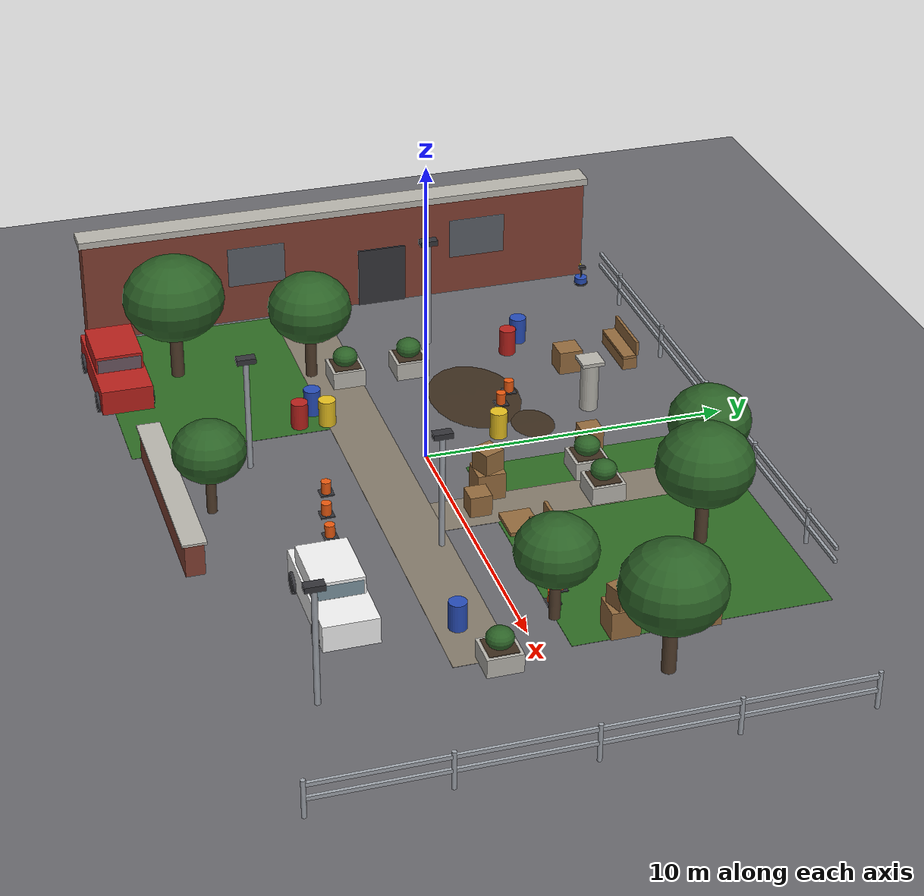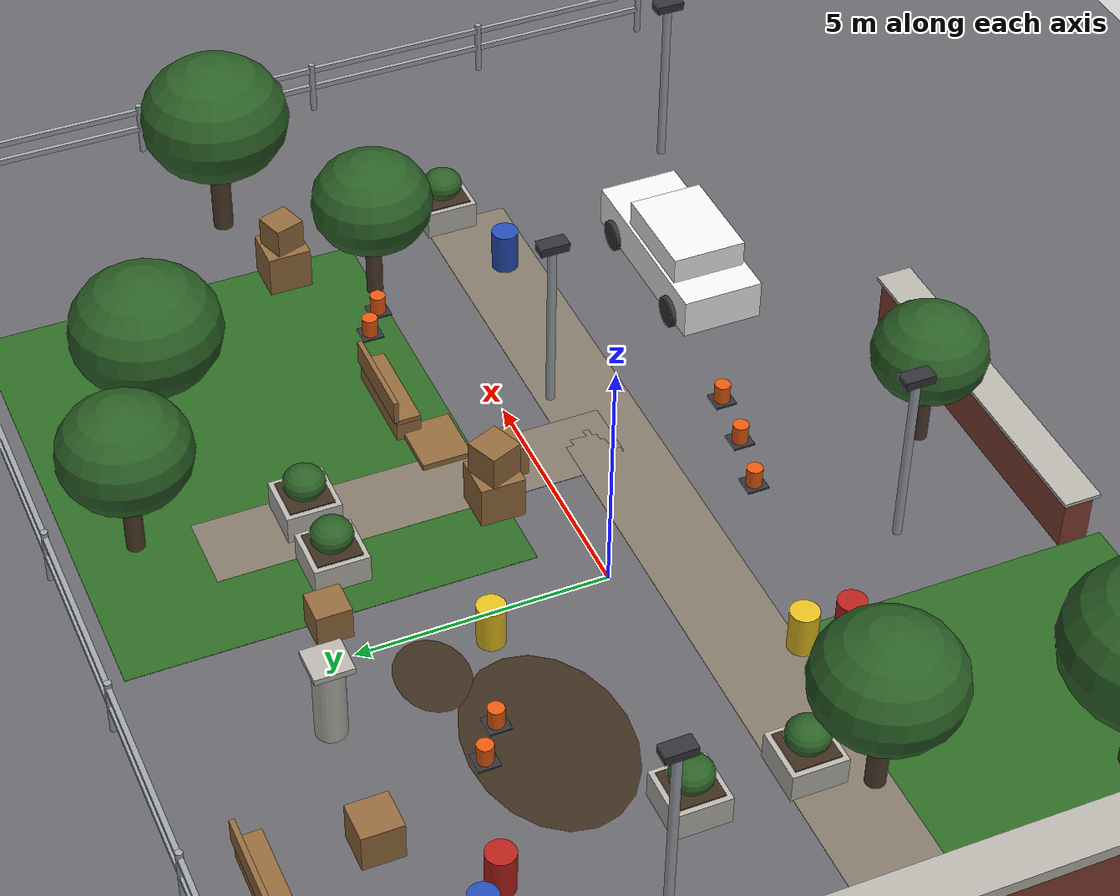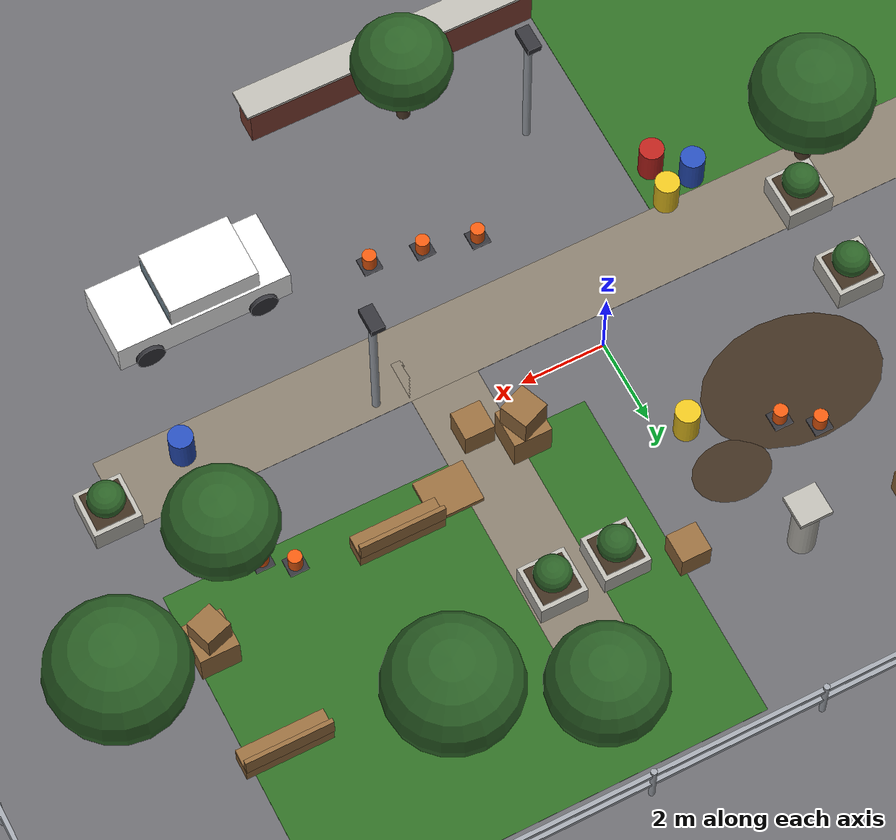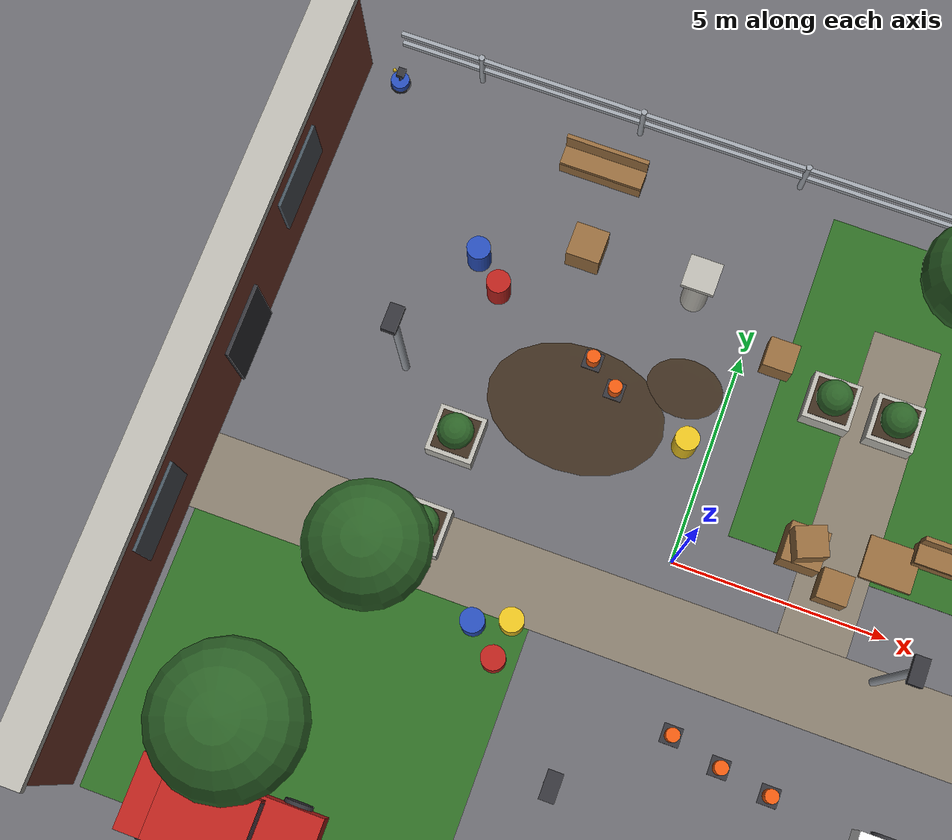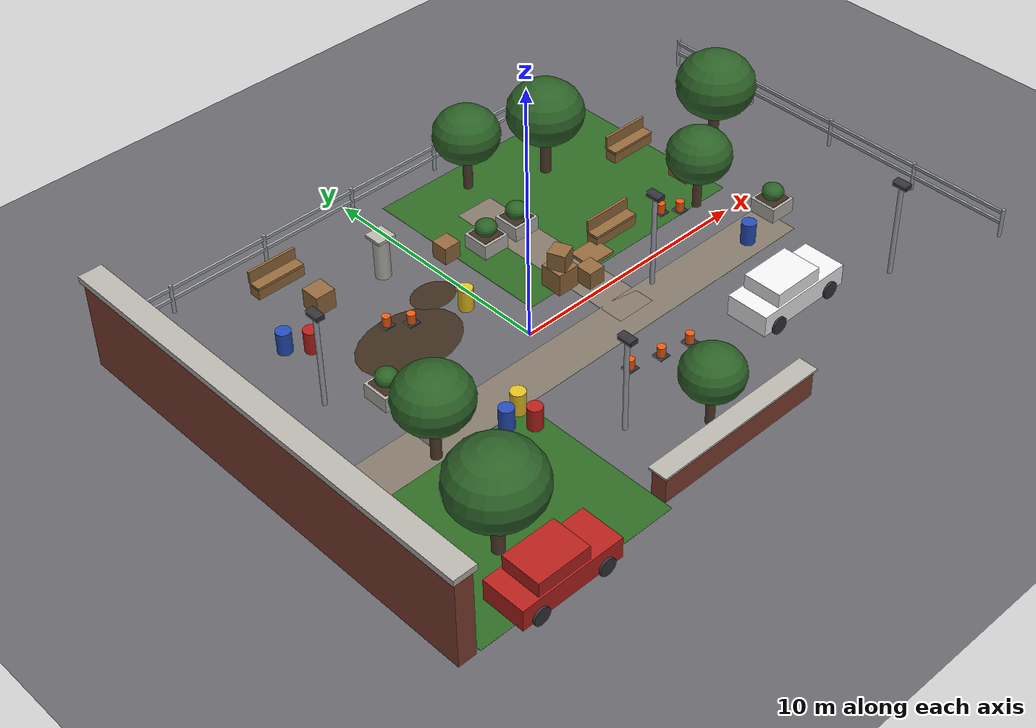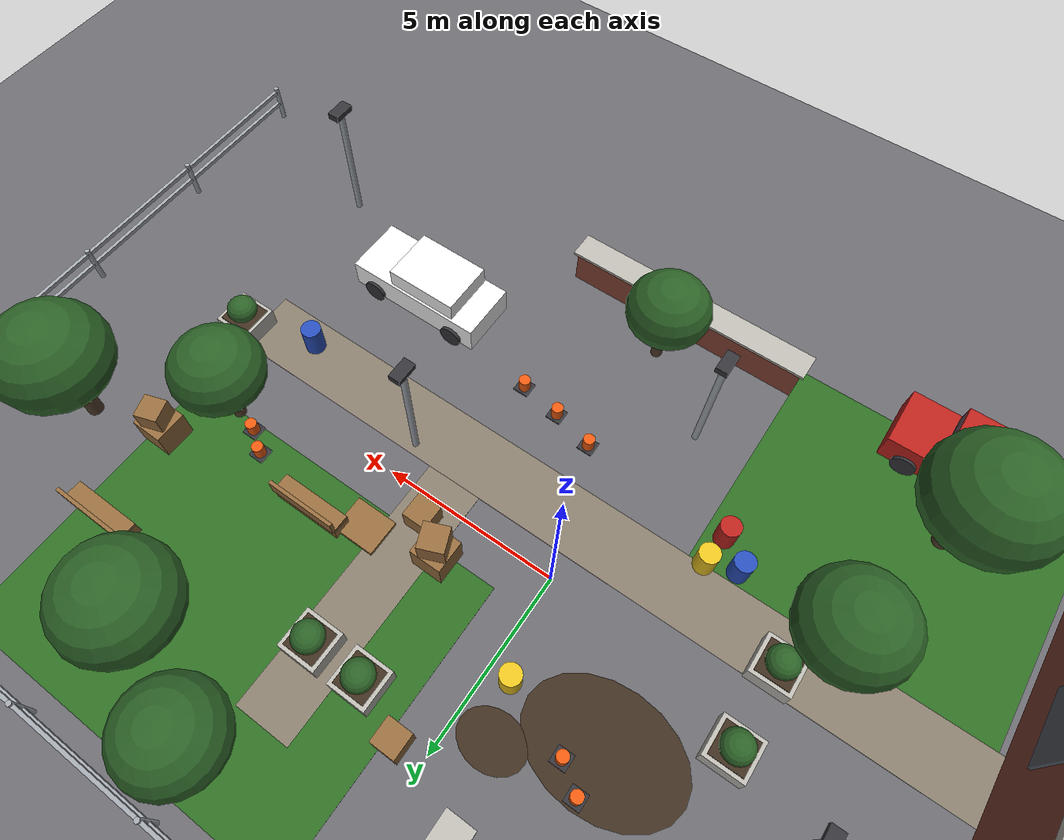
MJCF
<mujoco model="semantic_costmap_navigation">

    <compiler angle="degree" autolimits="true"/>

    <option timestep="0.005"
            gravity="0 0 -9.81"
            integrator="implicitfast"/>

    <visual>
        <headlight diffuse="0.3 0.3 0.3"
                   ambient="0.35 0.35 0.38"
                   specular="0.1 0.1 0.1"/>
        <quality shadowsize="4096" offsamples="8"/>
        <map force="0.1" zfar="80" fogstart="30" fogend="70"/>
        <global offwidth="1920" offheight="1080"/>
        <rgba haze="0.78 0.83 0.90 1"/>
    </visual>

    <asset>

        <texture name="tex_sky" type="skybox" builtin="gradient"
                 rgb1="0.30 0.50 0.80" rgb2="0.85 0.90 0.96"
                 width="512" height="1024"/>

        <texture name="tex_pavement" type="2d" builtin="checker"
                 rgb1="0.44 0.44 0.46" rgb2="0.38 0.38 0.40"
                 mark="random" markrgb="0.52 0.52 0.53" random="0.015"
                 width="512" height="512"/>

        <texture name="tex_grass" type="2d" builtin="flat"
                 rgb1="0.18 0.42 0.14"
                 mark="random" markrgb="0.34 0.60 0.25" random="0.45"
                 width="512" height="512"/>

        <texture name="tex_gravel" type="2d" builtin="flat"
                 rgb1="0.52 0.48 0.42"
                 mark="random" markrgb="0.68 0.65 0.60" random="0.55"
                 width="512" height="512"/>

        <texture name="tex_mud" type="2d" builtin="flat"
                 rgb1="0.24 0.18 0.12"
                 mark="random" markrgb="0.34 0.27 0.19" random="0.30"
                 width="512" height="512"/>

        <texture name="tex_brick" type="cube" builtin="checker"
                 rgb1="0.55 0.27 0.21" rgb2="0.47 0.23 0.18"
                 width="256" height="256"/>

        <texture name="tex_wood" type="cube" builtin="flat"
                 rgb1="0.58 0.42 0.24"
                 mark="edge" markrgb="0.40 0.28 0.15"
                 width="256" height="256"/>

        <texture name="tex_bark" type="cube" builtin="flat"
                 rgb1="0.32 0.24 0.17"
                 mark="random" markrgb="0.22 0.16 0.11" random="0.35"
                 width="256" height="256"/>

        <texture name="tex_foliage" type="cube" builtin="flat"
                 rgb1="0.17 0.38 0.15"
                 mark="random" markrgb="0.26 0.52 0.20" random="0.40"
                 width="256" height="256"/>

        <material name="mat_pavement" texture="tex_pavement"
                  texrepeat="24 24" texuniform="true"
                  specular="0.12" shininess="0.1" reflectance="0.04"/>

        <material name="mat_grass" texture="tex_grass"
                  texrepeat="16 16" texuniform="true"
                  specular="0.02" shininess="0.02"/>

        <material name="mat_gravel" texture="tex_gravel"
                  texrepeat="14 14" texuniform="true"
                  specular="0.05" shininess="0.05"/>

        <material name="mat_mud" texture="tex_mud"
                  texrepeat="8 8" texuniform="true"
                  specular="0.55" shininess="0.6" reflectance="0.12"/>

        <material name="mat_brick"   texture="tex_brick"   texrepeat="6 3" specular="0.05" shininess="0.05"/>
        <material name="mat_wood"    texture="tex_wood"    specular="0.15" shininess="0.15"/>
        <material name="mat_bark"    texture="tex_bark"    specular="0.05" shininess="0.05"/>
        <material name="mat_foliage" texture="tex_foliage" specular="0.08" shininess="0.1"/>

        <material name="mat_concrete" rgba="0.72 0.71 0.68 1" specular="0.1"  shininess="0.1"/>
        <material name="mat_orange"   rgba="0.92 0.35 0.06 1" specular="0.3"  shininess="0.3"/>
        <material name="mat_white"    rgba="0.95 0.95 0.95 1" specular="0.3"  shininess="0.3"/>
        <material name="mat_blue"     rgba="0.15 0.30 0.72 1" specular="0.55" shininess="0.6"/>
        <material name="mat_red"      rgba="0.72 0.13 0.11 1" specular="0.55" shininess="0.6"/>
        <material name="mat_yellow"   rgba="0.90 0.75 0.12 1" specular="0.4"  shininess="0.4"/>
        <material name="mat_steel"    rgba="0.62 0.64 0.67 1" specular="0.85" shininess="0.85" reflectance="0.15"/>
        <material name="mat_darkgrey" rgba="0.20 0.20 0.22 1" specular="0.3"  shininess="0.3"/>
        <material name="mat_glass"    rgba="0.35 0.48 0.55 0.7" specular="0.9" shininess="0.9" reflectance="0.3"/>

    </asset>

    <default>
        <default class="obstacle">
            <geom contype="1" conaffinity="1" condim="3" friction="0.9 0.01 0.001"/>
        </default>
        <default class="terrain">
            <geom contype="0" conaffinity="0" group="0"/>
        </default>
    </default>

    <worldbody>

        <light name="sun"
               pos="6 -8 12" dir="-0.4 0.55 -0.85"
               directional="true" castshadow="true"
               diffuse="0.85 0.83 0.78" specular="0.25 0.25 0.25"/>

        <light name="fill"
               pos="-8 6 9" dir="0.5 -0.4 -0.8"
               directional="true" castshadow="false"
               diffuse="0.22 0.24 0.30"/>

        <geom name="floor" type="plane" size="25 25 0.1"
              material="mat_pavement"
              contype="1" conaffinity="1" condim="3"
              friction="1.0 0.01 0.001"/>

        <geom name="grass_patch" class="terrain" type="box"
              pos="6 5 0.005" size="5.0 4.0 0.005" material="mat_grass"/>

        <geom name="grass_lawn_b" class="terrain" type="box"
              pos="-6.5 -5.5 0.005" size="4.0 3.5 0.005" material="mat_grass"/>

        <geom name="gravel_path" class="terrain" type="box"
              pos="0 -1.6 0.006" size="11.0 0.9 0.005" material="mat_gravel"/>

        <geom name="gravel_spur" class="terrain" type="box"
              pos="3.5 2.5 0.006" size="0.8 4.2 0.005" material="mat_gravel"/>

        <geom name="mud_patch" class="terrain" type="ellipsoid"
              pos="-3.2 2.6 0.004" size="2.1 1.5 0.004" material="mat_mud"/>

        <geom name="mud_patch_small" class="terrain" type="ellipsoid"
              pos="-1.0 3.9 0.004" size="0.9 0.7 0.004" material="mat_mud"/>

        <body name="robot" pos="-9.8 8.7 0.20">

            <freejoint/>

            <geom name="robot_body" class="obstacle" type="cylinder"
                  size="0.22 0.13" material="mat_blue" mass="8.0"/>

            <geom name="robot_bumper" class="terrain" type="cylinder"
                  pos="0 0 -0.10" size="0.24 0.03" material="mat_darkgrey"/>

            <geom name="camera_mount" class="terrain" type="capsule"
                  fromto="0 0 0.13 0 0 0.50" size="0.028" material="mat_darkgrey"/>

            <geom name="sensor_head" class="terrain" type="box"
                  pos="0.06 0 0.53" size="0.09 0.11 0.05" material="mat_darkgrey"/>

            <geom name="robot_beacon" class="terrain" type="sphere"
                  pos="-0.10 0 0.56" size="0.045" material="mat_yellow"/>

            <camera name="rgbd_camera"
                    pos="0.16 0 0.53"
                    xyaxes="0 -1 0  0.259 0 0.966"
                    fovy="90"/>

        </body>

        <geom name="building_wall" class="obstacle" type="box"
              pos="-11.0 0 1.8" size="0.35 9.0 1.8" material="mat_brick"/>

        <geom name="building_trim" class="terrain" type="box"
              pos="-11.0 0 3.68" size="0.45 9.1 0.12" material="mat_concrete"/>

        <geom name="doorway" class="terrain" type="box"
              pos="-10.62 1.5 1.05" size="0.04 0.85 1.05" material="mat_darkgrey"/>

        <geom name="window_a" class="terrain" type="box"
              pos="-10.62 -3.0 2.10" size="0.04 1.0 0.7" material="mat_glass"/>

        <geom name="window_b" class="terrain" type="box"
              pos="-10.62 5.0 2.10" size="0.04 1.0 0.7" material="mat_glass"/>

        <geom name="tree_1_trunk"  class="obstacle" type="cylinder"
              pos="7.0 6.5 1.1" size="0.20 1.1" material="mat_bark"/>
        <geom name="tree_1_canopy" class="terrain" type="ellipsoid"
              pos="7.0 6.5 2.7" size="1.5 1.5 1.25" material="mat_foliage"/>

        <geom name="tree_2_trunk"  class="obstacle" type="cylinder"
              pos="4.2 7.8 1.0" size="0.18 1.0" material="mat_bark"/>
        <geom name="tree_2_canopy" class="terrain" type="ellipsoid"
              pos="4.2 7.8 2.4" size="1.3 1.3 1.1" material="mat_foliage"/>

        <geom name="tree_3_trunk"  class="obstacle" type="cylinder"
              pos="-7.5 -6.5 1.2" size="0.22 1.2" material="mat_bark"/>
        <geom name="tree_3_canopy" class="terrain" type="ellipsoid"
              pos="-7.5 -6.5 2.9" size="1.7 1.7 1.4" material="mat_foliage"/>

        <geom name="tree_4_trunk"  class="obstacle" type="cylinder"
              pos="9.5 1.0 0.95" size="0.17 0.95" material="mat_bark"/>
        <geom name="tree_4_canopy" class="terrain" type="ellipsoid"
              pos="9.5 1.0 2.3" size="1.25 1.25 1.05" material="mat_foliage"/>

        <geom name="crate_1" class="obstacle" type="box"
              pos="2.6 1.2 0.45" size="0.45 0.45 0.45" material="mat_wood"/>

        <geom name="crate_2" class="obstacle" type="box"
              pos="3.5 0.6 0.35" size="0.35 0.35 0.35" material="mat_wood"/>

        <geom name="crate_3" class="obstacle" type="box"
              pos="2.6 1.2 1.25" size="0.35 0.35 0.35"
              euler="0 0 22" material="mat_wood"/>

        <geom name="pallet" class="obstacle" type="box"
              pos="4.6 1.6 0.07" size="0.6 0.5 0.07" material="mat_wood"/>

        <geom name="barrel_1" class="obstacle" type="cylinder"
              pos="-3.0 -3.4 0.45" size="0.28 0.45" material="mat_red"/>

        <geom name="barrel_2" class="obstacle" type="cylinder"
              pos="-3.7 -2.8 0.45" size="0.28 0.45" material="mat_blue"/>

        <geom name="barrel_3" class="obstacle" type="cylinder"
              pos="-2.9 -2.5 0.45" size="0.28 0.45" material="mat_yellow"/>

        <geom name="cone_1" class="obstacle" type="cylinder"
              pos="1.2 -3.6 0.22" size="0.16 0.22" material="mat_orange"/>
        <geom name="cone_1_base" class="terrain" type="box"
              pos="1.2 -3.6 0.02" size="0.22 0.22 0.02" material="mat_darkgrey"/>

        <geom name="cone_2" class="obstacle" type="cylinder"
              pos="2.4 -3.9 0.22" size="0.16 0.22" material="mat_orange"/>
        <geom name="cone_2_base" class="terrain" type="box"
              pos="2.4 -3.9 0.02" size="0.22 0.22 0.02" material="mat_darkgrey"/>

        <geom name="cone_3" class="obstacle" type="cylinder"
              pos="3.6 -4.1 0.22" size="0.16 0.22" material="mat_orange"/>
        <geom name="cone_3_base" class="terrain" type="box"
              pos="3.6 -4.1 0.02" size="0.22 0.22 0.02" material="mat_darkgrey"/>

        <geom name="bench_seat" class="obstacle" type="box"
              pos="6.0 2.0 0.45" size="1.0 0.25 0.05" material="mat_wood"/>
        <geom name="bench_back" class="obstacle" type="box"
              pos="6.0 2.25 0.72" size="1.0 0.05 0.25" material="mat_wood"/>
        <geom name="bench_apron" class="obstacle" type="box"
              pos="6.00 2.00 0.20" size="1.00 0.25 0.20" material="mat_wood"/>

        <geom name="car_body" class="obstacle" type="box"
              pos="7.5 -5.0 0.62" size="2.05 0.85 0.42" material="mat_white"/>
        <geom name="car_cabin" class="obstacle" type="box"
              pos="7.2 -5.0 1.28" size="1.05 0.78 0.32" material="mat_white"/>
        <geom name="car_windshield" class="terrain" type="box"
              pos="8.22 -5.0 1.24" size="0.04 0.72 0.26" material="mat_glass"/>
        <geom name="car_wheel_fl" class="terrain" type="cylinder"
              pos="8.85 -4.2 0.33" euler="90 0 0" size="0.33 0.14" material="mat_darkgrey"/>
        <geom name="car_wheel_fr" class="terrain" type="cylinder"
              pos="8.85 -5.8 0.33" euler="90 0 0" size="0.33 0.14" material="mat_darkgrey"/>
        <geom name="car_wheel_rl" class="terrain" type="cylinder"
              pos="6.15 -4.2 0.33" euler="90 0 0" size="0.33 0.14" material="mat_darkgrey"/>
        <geom name="car_wheel_rr" class="terrain" type="cylinder"
              pos="6.15 -5.8 0.33" euler="90 0 0" size="0.33 0.14" material="mat_darkgrey"/>

        <geom name="lamp_1_pole" class="obstacle" type="cylinder"
              pos="-1.0 -5.5 1.9" size="0.09 1.9" material="mat_steel"/>
        <geom name="lamp_1_head" class="terrain" type="box"
              pos="-1.0 -5.5 3.85" size="0.16 0.30 0.09" material="mat_darkgrey"/>

        <geom name="lamp_2_pole" class="obstacle" type="cylinder"
              pos="5.0 -1.0 1.9" size="0.09 1.9" material="mat_steel"/>
        <geom name="lamp_2_head" class="terrain" type="box"
              pos="5.0 -1.0 3.85" size="0.16 0.30 0.09" material="mat_darkgrey"/>

        <geom name="fence_rail_top" class="obstacle" type="box"
              pos="0 9.5 1.05" size="10.0 0.05 0.06" material="mat_steel"/>
        <geom name="fence_rail_mid" class="obstacle" type="box"
              pos="0 9.5 0.60" size="10.0 0.05 0.06" material="mat_steel"/>
        <geom name="fence_post_1" class="obstacle" type="cylinder"
              pos="-8.0 9.5 0.6" size="0.07 0.6" material="mat_steel"/>
        <geom name="fence_post_2" class="obstacle" type="cylinder"
              pos="-4.0 9.5 0.6" size="0.07 0.6" material="mat_steel"/>
        <geom name="fence_post_3" class="obstacle" type="cylinder"
              pos="0.0 9.5 0.6" size="0.07 0.6" material="mat_steel"/>
        <geom name="fence_post_4" class="obstacle" type="cylinder"
              pos="4.0 9.5 0.6" size="0.07 0.6" material="mat_steel"/>
        <geom name="fence_post_5" class="obstacle" type="cylinder"
              pos="8.0 9.5 0.6" size="0.07 0.6" material="mat_steel"/>

        <geom name="planter_1" class="obstacle" type="box"
              pos="-5.5 1.0 0.30" size="0.55 0.55 0.30" material="mat_concrete"/>
        <geom name="planter_1_soil" class="terrain" type="box"
              pos="-5.5 1.0 0.61" size="0.45 0.45 0.02" material="mat_mud"/>
        <geom name="planter_1_shrub" class="terrain" type="ellipsoid"
              pos="-5.5 1.0 0.90" size="0.42 0.42 0.32" material="mat_foliage"/>

        <geom name="pillar" class="obstacle" type="cylinder"
              pos="-1.5 6.0 0.85" size="0.30 0.85" material="mat_concrete"/>
        <geom name="pillar_cap" class="terrain" type="box"
              pos="-1.5 6.0 1.75" size="0.38 0.38 0.06" material="mat_concrete"/>

        <geom name="planter_2" class="obstacle" type="box"
              pos="-5.5 -1.2 0.30" size="0.55 0.55 0.30" material="mat_concrete"/>
        <geom name="planter_2_soil" class="terrain" type="box"
              pos="-5.5 -1.2 0.61" size="0.45 0.45 0.02" material="mat_mud"/>
        <geom name="planter_2_shrub" class="terrain" type="ellipsoid"
              pos="-5.5 -1.2 0.90" size="0.42 0.42 0.32" material="mat_foliage"/>

        <camera name="top_down" pos="0 0 26" xyaxes="1 0 0  0 1 0" fovy="60"/>

        <geom name="barrel_4" class="obstacle" type="cylinder"
              pos="-6.5 5.2 0.45" size="0.28 0.45" material="mat_blue"/>
        <geom name="barrel_5" class="obstacle" type="cylinder"
              pos="-5.8 4.6 0.45" size="0.28 0.45" material="mat_red"/>
        <geom name="barrel_6" class="obstacle" type="cylinder"
              pos="-0.6 2.6 0.45" size="0.28 0.45" material="mat_yellow"/>
        <geom name="barrel_7" class="obstacle" type="cylinder"
              pos="9.2 -1.8 0.45" size="0.28 0.45" material="mat_blue"/>

        <geom name="crate_4" class="obstacle" type="box"
              pos="-4.2 6.2 0.40" size="0.40 0.40 0.40" material="mat_wood"/>
        <geom name="crate_5" class="obstacle" type="box"
              pos="0.8 5.2 0.35" size="0.35 0.35 0.35" material="mat_wood"/>
        <geom name="crate_6" class="obstacle" type="box"
              pos="10.6 2.6 0.45" size="0.45 0.45 0.45" material="mat_wood"/>
        <geom name="crate_7" class="obstacle" type="box"
              pos="10.6 2.6 1.20" euler="0 0 18" size="0.32 0.32 0.32" material="mat_wood"/>

        <geom name="cone_4" class="obstacle" type="cylinder"
              pos="-3.2 3.8 0.22" size="0.16 0.22" material="mat_orange"/>
        <geom name="cone_4_base" class="terrain" type="box"
              pos="-3.2 3.8 0.02" size="0.22 0.22 0.02" material="mat_darkgrey"/>
        <geom name="cone_5" class="obstacle" type="cylinder"
              pos="-2.5 3.3 0.22" size="0.16 0.22" material="mat_orange"/>
        <geom name="cone_5_base" class="terrain" type="box"
              pos="-2.5 3.3 0.02" size="0.22 0.22 0.02" material="mat_darkgrey"/>
        <geom name="cone_6" class="obstacle" type="cylinder"
              pos="8.2 1.6 0.22" size="0.16 0.22" material="mat_orange"/>
        <geom name="cone_6_base" class="terrain" type="box"
              pos="8.2 1.6 0.02" size="0.22 0.22 0.02" material="mat_darkgrey"/>
        <geom name="cone_7" class="obstacle" type="cylinder"
              pos="8.8 1.2 0.22" size="0.16 0.22" material="mat_orange"/>
        <geom name="cone_7_base" class="terrain" type="box"
              pos="8.8 1.2 0.02" size="0.22 0.22 0.02" material="mat_darkgrey"/>

        <geom name="planter_3" class="obstacle" type="box"
              pos="2.2 4.6 0.30" size="0.55 0.55 0.30" material="mat_concrete"/>
        <geom name="planter_3_soil" class="terrain" type="box"
              pos="2.2 4.6 0.61" size="0.45 0.45 0.02" material="mat_mud"/>
        <geom name="planter_3_shrub" class="terrain" type="ellipsoid"
              pos="2.2 4.6 0.90" size="0.42 0.42 0.32" material="mat_foliage"/>

        <geom name="planter_4" class="obstacle" type="box"
              pos="3.7 4.6 0.30" size="0.55 0.55 0.30" material="mat_concrete"/>
        <geom name="planter_4_soil" class="terrain" type="box"
              pos="3.7 4.6 0.61" size="0.45 0.45 0.02" material="mat_mud"/>
        <geom name="planter_4_shrub" class="terrain" type="ellipsoid"
              pos="3.7 4.6 0.90" size="0.42 0.42 0.32" material="mat_foliage"/>

        <geom name="planter_5" class="obstacle" type="box"
              pos="11.2 -1.2 0.30" size="0.55 0.55 0.30" material="mat_concrete"/>
        <geom name="planter_5_soil" class="terrain" type="box"
              pos="11.2 -1.2 0.61" size="0.45 0.45 0.02" material="mat_mud"/>
        <geom name="planter_5_shrub" class="terrain" type="ellipsoid"
              pos="11.2 -1.2 0.90" size="0.42 0.42 0.32" material="mat_foliage"/>

        <geom name="bench_2_seat" class="obstacle" type="box"
              pos="-4.5 8.2 0.45" size="1.0 0.25 0.05" material="mat_wood"/>
        <geom name="bench_2_back" class="obstacle" type="box"
              pos="-4.5 8.45 0.72" size="1.0 0.05 0.25" material="mat_wood"/>
        <geom name="bench_2_apron" class="obstacle" type="box"
              pos="-4.50 8.20 0.20" size="1.00 0.25 0.20" material="mat_wood"/>

        <geom name="bench_3_seat" class="obstacle" type="box"
              pos="10.2 5.2 0.45" size="1.0 0.25 0.05" material="mat_wood"/>
        <geom name="bench_3_back" class="obstacle" type="box"
              pos="10.2 5.45 0.72" size="1.0 0.05 0.25" material="mat_wood"/>
        <geom name="bench_3_apron" class="obstacle" type="box"
              pos="10.20 5.20 0.20" size="1.00 0.25 0.20" material="mat_wood"/>

        <geom name="tree_5_trunk" class="obstacle" type="cylinder"
              pos="-6.2 -2.2 1.05" size="0.19 1.05" material="mat_bark"/>
        <geom name="tree_5_canopy" class="terrain" type="ellipsoid"
              pos="-6.2 -2.2 2.55" size="1.4 1.4 1.15" material="mat_foliage"/>

        <geom name="tree_6_trunk" class="obstacle" type="cylinder"
              pos="12.8 3.2 1.15" size="0.21 1.15" material="mat_bark"/>
        <geom name="tree_6_canopy" class="terrain" type="ellipsoid"
              pos="12.8 3.2 2.8" size="1.55 1.55 1.3" material="mat_foliage"/>

        <geom name="tree_7_trunk" class="obstacle" type="cylinder"
              pos="1.2 -7.2 0.90" size="0.16 0.90" material="mat_bark"/>
        <geom name="tree_7_canopy" class="terrain" type="ellipsoid"
              pos="1.2 -7.2 2.15" size="1.15 1.15 0.95" material="mat_foliage"/>

        <geom name="lamp_3_pole" class="obstacle" type="cylinder"
              pos="-7.2 2.2 1.9" size="0.09 1.9" material="mat_steel"/>
        <geom name="lamp_3_head" class="terrain" type="box"
              pos="-7.2 2.2 3.85" size="0.16 0.30 0.09" material="mat_darkgrey"/>

        <geom name="lamp_4_pole" class="obstacle" type="cylinder"
              pos="11.5 -6.5 1.9" size="0.09 1.9" material="mat_steel"/>
        <geom name="lamp_4_head" class="terrain" type="box"
              pos="11.5 -6.5 3.85" size="0.16 0.30 0.09" material="mat_darkgrey"/>

        <geom name="garden_wall" class="obstacle" type="box"
              pos="1.0 -8.4 0.55" size="3.5 0.30 0.55" material="mat_brick"/>
        <geom name="garden_wall_cap" class="terrain" type="box"
              pos="1.0 -8.4 1.13" size="3.6 0.38 0.04" material="mat_concrete"/>

        <geom name="fence_e_rail_top" class="obstacle" type="box"
              pos="16.0 0 1.05" size="0.05 8.0 0.06" material="mat_steel"/>
        <geom name="fence_e_rail_mid" class="obstacle" type="box"
              pos="16.0 0 0.60" size="0.05 8.0 0.06" material="mat_steel"/>
        <geom name="fence_e_post_1" class="obstacle" type="cylinder"
              pos="16.0 -8.0 0.6" size="0.07 0.6" material="mat_steel"/>
        <geom name="fence_e_post_2" class="obstacle" type="cylinder"
              pos="16.0 -4.0 0.6" size="0.07 0.6" material="mat_steel"/>
        <geom name="fence_e_post_3" class="obstacle" type="cylinder"
              pos="16.0 0.0 0.6" size="0.07 0.6" material="mat_steel"/>
        <geom name="fence_e_post_4" class="obstacle" type="cylinder"
              pos="16.0 4.0 0.6" size="0.07 0.6" material="mat_steel"/>
        <geom name="fence_e_post_5" class="obstacle" type="cylinder"
              pos="16.0 8.0 0.6" size="0.07 0.6" material="mat_steel"/>

        <geom name="car_2_body" class="obstacle" type="box"
              pos="-7.2 -8.6 0.62" size="2.05 0.85 0.42" material="mat_red"/>
        <geom name="car_2_cabin" class="obstacle" type="box"
              pos="-7.5 -8.6 1.28" size="1.05 0.78 0.32" material="mat_red"/>
        <geom name="car_2_windshield" class="terrain" type="box"
              pos="-6.48 -8.6 1.24" size="0.04 0.72 0.26" material="mat_glass"/>
        <geom name="car_2_wheel_fl" class="terrain" type="cylinder"
              pos="-5.85 -7.8 0.33" euler="90 0 0" size="0.33 0.14" material="mat_darkgrey"/>
        <geom name="car_2_wheel_fr" class="terrain" type="cylinder"
              pos="-5.85 -9.4 0.33" euler="90 0 0" size="0.33 0.14" material="mat_darkgrey"/>
        <geom name="car_2_wheel_rl" class="terrain" type="cylinder"
              pos="-8.55 -7.8 0.33" euler="90 0 0" size="0.33 0.14" material="mat_darkgrey"/>
        <geom name="car_2_wheel_rr" class="terrain" type="cylinder"
              pos="-8.55 -9.4 0.33" euler="90 0 0" size="0.33 0.14" material="mat_darkgrey"/>

    </worldbody>

</mujoco>
